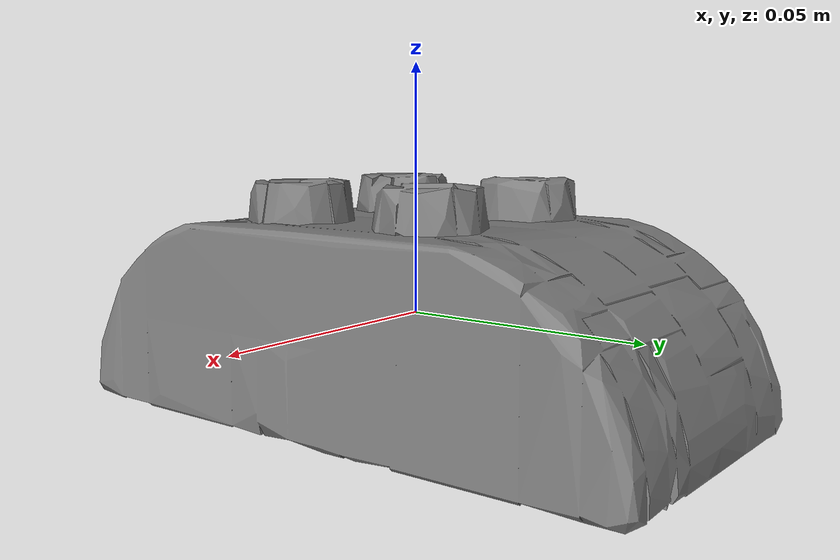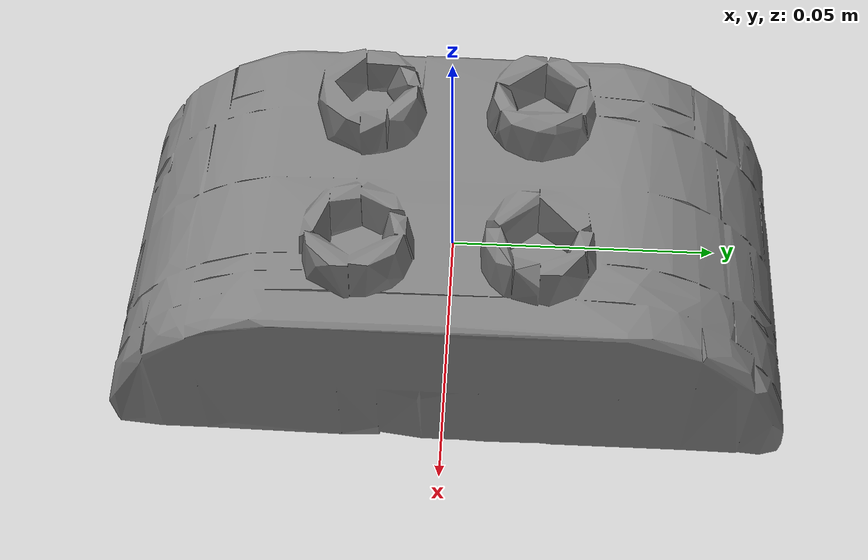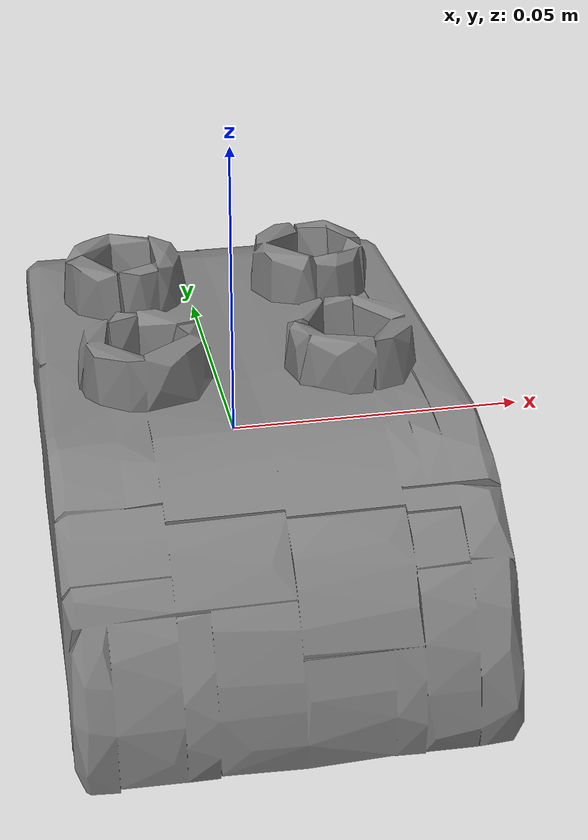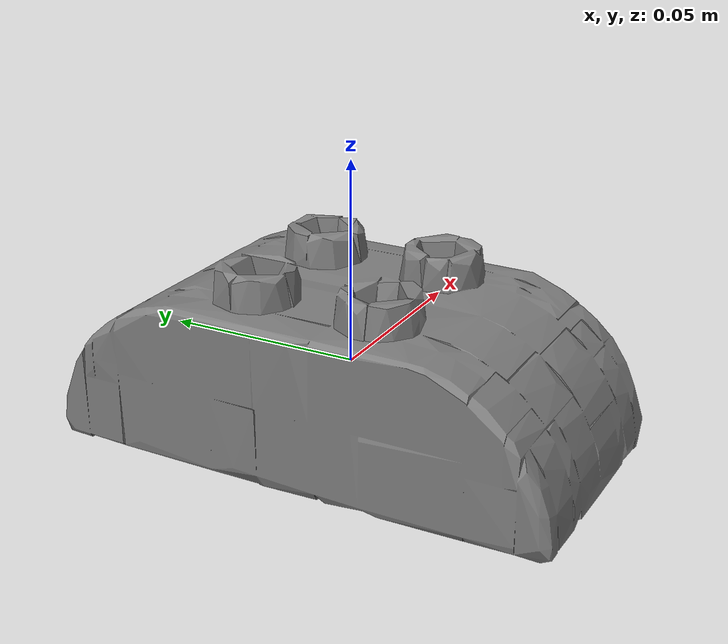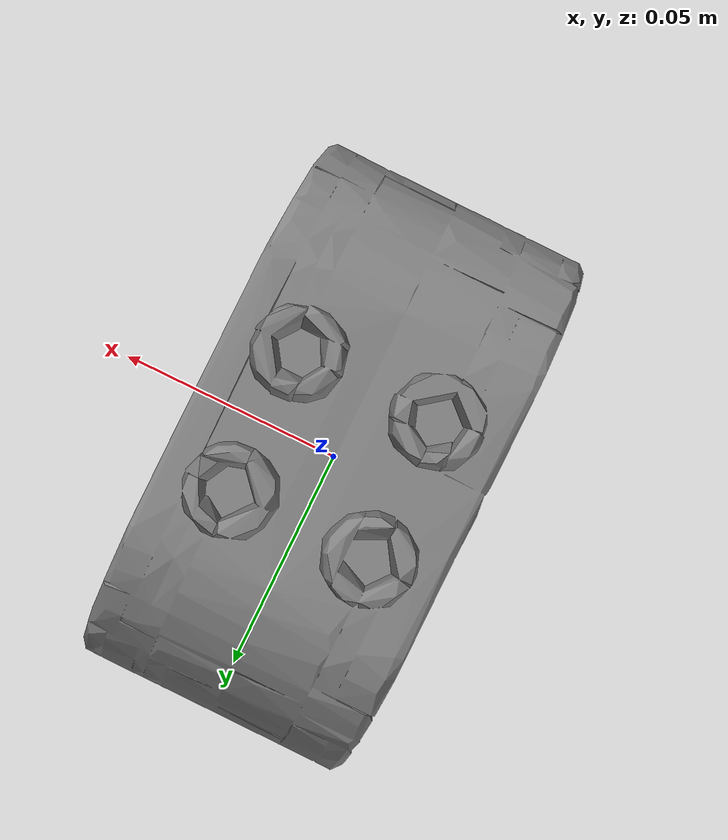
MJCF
<mujoco model="lego_block_073-a_lego_duplo_M">
  <default>
    <default class="visual">
      <geom group="2" type="mesh" contype="0" conaffinity="0" />
    </default>
    <default class="collision">
      <geom group="3" type="mesh" />
    </default>
  </default>
  <asset>
    <mesh file="lego_block_073-a_lego_duplo_M.stl" />
    <mesh file="lego_block_073-a_lego_duplo_M_collision_0.stl" />
    <mesh file="lego_block_073-a_lego_duplo_M_collision_1.stl" />
    <mesh file="lego_block_073-a_lego_duplo_M_collision_2.stl" />
    <mesh file="lego_block_073-a_lego_duplo_M_collision_3.stl" />
    <mesh file="lego_block_073-a_lego_duplo_M_collision_4.stl" />
    <mesh file="lego_block_073-a_lego_duplo_M_collision_5.stl" />
    <mesh file="lego_block_073-a_lego_duplo_M_collision_6.stl" />
    <mesh file="lego_block_073-a_lego_duplo_M_collision_7.stl" />
    <mesh file="lego_block_073-a_lego_duplo_M_collision_8.stl" />
    <mesh file="lego_block_073-a_lego_duplo_M_collision_9.stl" />
    <mesh file="lego_block_073-a_lego_duplo_M_collision_10.stl" />
    <mesh file="lego_block_073-a_lego_duplo_M_collision_11.stl" />
    <mesh file="lego_block_073-a_lego_duplo_M_collision_12.stl" />
    <mesh file="lego_block_073-a_lego_duplo_M_collision_13.stl" />
    <mesh file="lego_block_073-a_lego_duplo_M_collision_14.stl" />
    <mesh file="lego_block_073-a_lego_duplo_M_collision_15.stl" />
  </asset>
  <worldbody>
    <body name="lego_block_073-a_lego_duplo_M">
      <geom mesh="lego_block_073-a_lego_duplo_M" class="visual" />
      <geom mesh="lego_block_073-a_lego_duplo_M_collision_0" class="collision" />
      <geom mesh="lego_block_073-a_lego_duplo_M_collision_1" class="collision" />
      <geom mesh="lego_block_073-a_lego_duplo_M_collision_2" class="collision" />
      <geom mesh="lego_block_073-a_lego_duplo_M_collision_3" class="collision" />
      <geom mesh="lego_block_073-a_lego_duplo_M_collision_4" class="collision" />
      <geom mesh="lego_block_073-a_lego_duplo_M_collision_5" class="collision" />
      <geom mesh="lego_block_073-a_lego_duplo_M_collision_6" class="collision" />
      <geom mesh="lego_block_073-a_lego_duplo_M_collision_7" class="collision" />
      <geom mesh="lego_block_073-a_lego_duplo_M_collision_8" class="collision" />
      <geom mesh="lego_block_073-a_lego_duplo_M_collision_9" class="collision" />
      <geom mesh="lego_block_073-a_lego_duplo_M_collision_10" class="collision" />
      <geom mesh="lego_block_073-a_lego_duplo_M_collision_11" class="collision" />
      <geom mesh="lego_block_073-a_lego_duplo_M_collision_12" class="collision" />
      <geom mesh="lego_block_073-a_lego_duplo_M_collision_13" class="collision" />
      <geom mesh="lego_block_073-a_lego_duplo_M_collision_14" class="collision" />
      <geom mesh="lego_block_073-a_lego_duplo_M_collision_15" class="collision" />
    </body>
  </worldbody>
</mujoco>
